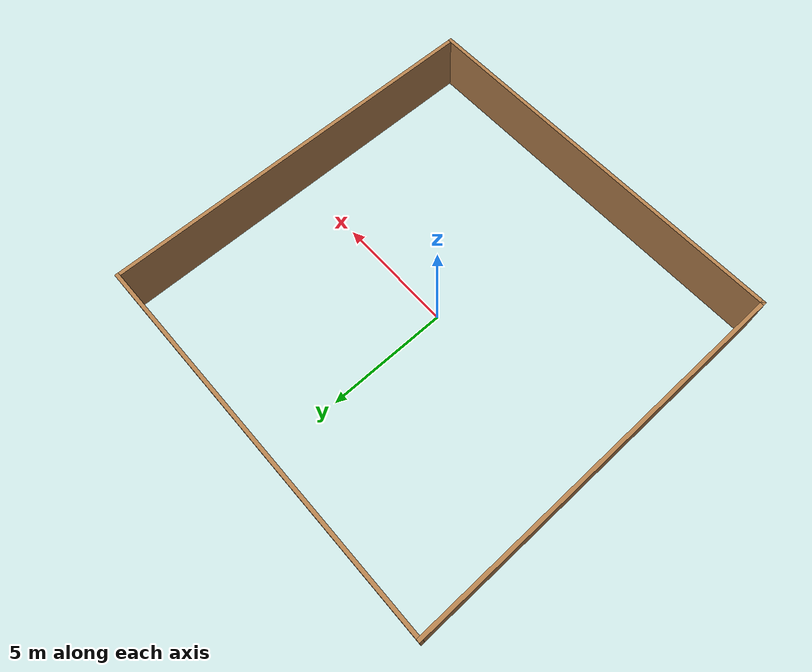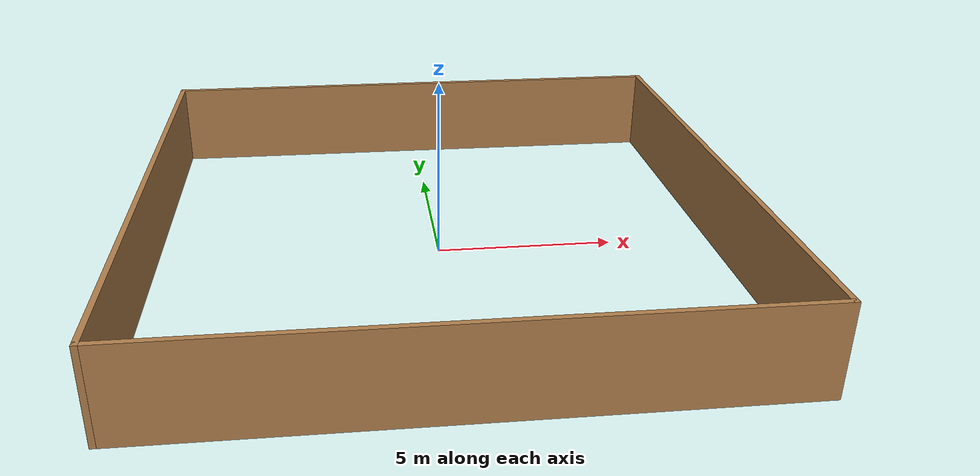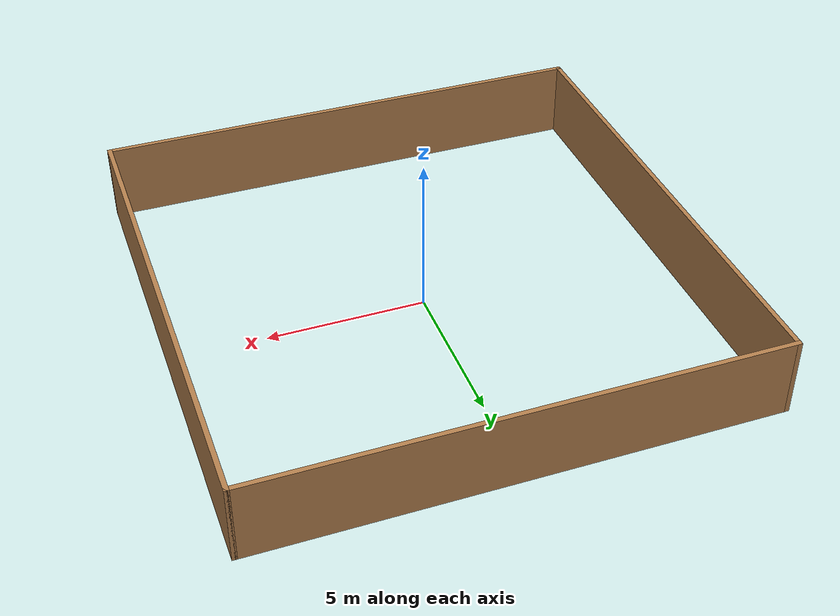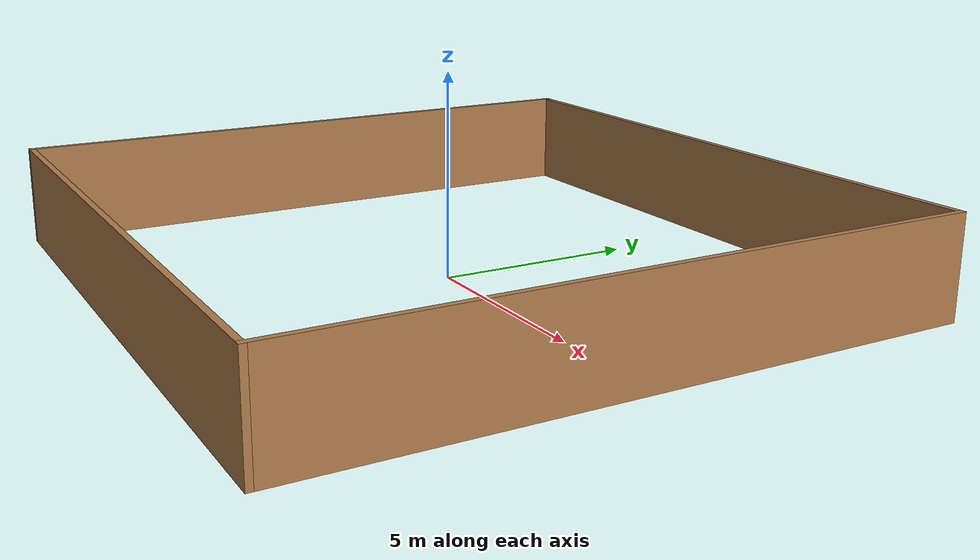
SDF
<?xml version='1.0'?>
<sdf version='1.6'>
  <model name='square'>
    <pose frame=''>0 0 0 0 -0 0</pose>
    <link name='Wall_0'>
      <collision name='Wall_0_Collision'>
        <geometry>
          <box>
            <size>16.1502 0.15 2.5</size>
          </box>
        </geometry>
        <pose frame=''>0 0 1.25 0 -0 0</pose>
      </collision>
      <visual name='Wall_0_Visual'>
        <pose frame=''>0 0 1.25 0 -0 0</pose>
        <geometry>
          <box>
            <size>16.1502 0.15 2.5</size>
          </box>
        </geometry>
        <material>
          <script>
            <uri>file://media/materials/scripts/gazebo.material</uri>
            <name>Gazebo/Wood</name>
          </script>
          <ambient>1 1 1 1</ambient>
        </material>
      </visual>
      <pose frame=''>-8 0 0 0 0 -1.5708</pose>
    </link>
    <link name='Wall_5'>
      <collision name='Wall_5_Collision'>
        <geometry>
          <box>
            <size>16.15 0.15 2.5</size>
          </box>
        </geometry>
        <pose frame=''>0 0 1.25 0 -0 0</pose>
      </collision>
      <visual name='Wall_5_Visual'>
        <pose frame=''>0 0 1.25 0 -0 0</pose>
        <geometry>
          <box>
            <size>16.15 0.15 2.5</size>
          </box>
        </geometry>
        <material>
          <script>
            <uri>file://media/materials/scripts/gazebo.material</uri>
            <name>Gazebo/Wood</name>
          </script>
          <ambient>1 1 1 1</ambient>
        </material>
      </visual>
      <pose frame=''>0 8 0 0 -0 0</pose>
    </link>
    <link name='Wall_6'>
      <collision name='Wall_6_Collision'>
        <geometry>
          <box>
            <size>16.15 0.15 2.5</size>
          </box>
        </geometry>
        <pose frame=''>0 0 1.25 0 -0 0</pose>
      </collision>
      <visual name='Wall_6_Visual'>
        <pose frame=''>0 0 1.25 0 -0 0</pose>
        <geometry>
          <box>
            <size>16.15 0.15 2.5</size>
          </box>
        </geometry>
        <material>
          <script>
            <uri>file://media/materials/scripts/gazebo.material</uri>
            <name>Gazebo/Wood</name>
          </script>
          <ambient>1 1 1 1</ambient>
        </material>
      </visual>
      <pose frame=''>8 0 0 0 0 -1.5708</pose>
    </link>
    <link name='Wall_7'>
      <collision name='Wall_7_Collision'>
        <geometry>
          <box>
            <size>16.15 0.15 2.5</size>
          </box>
        </geometry>
        <pose frame=''>0 0 1.25 0 -0 0</pose>
      </collision>
      <visual name='Wall_7_Visual'>
        <pose frame=''>0 0 1.25 0 -0 0</pose>
        <geometry>
          <box>
            <size>16.15 0.15 2.5</size>
          </box>
        </geometry>
        <material>
          <script>
            <uri>file://media/materials/scripts/gazebo.material</uri>
            <name>Gazebo/Wood</name>
          </script>
          <ambient>1 1 1 1</ambient>
        </material>
      </visual>
      <pose frame=''>0 -8 0 0 -0 3.14159</pose>
    </link>
    <static>1</static>
  </model>
</sdf>
